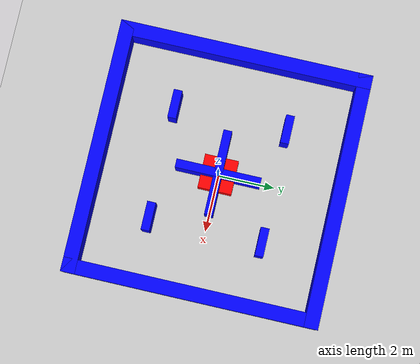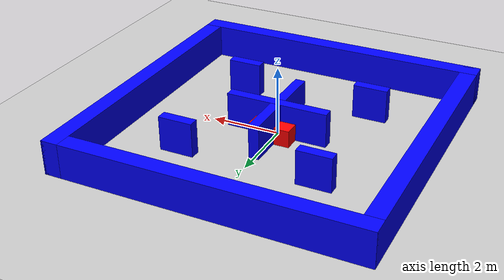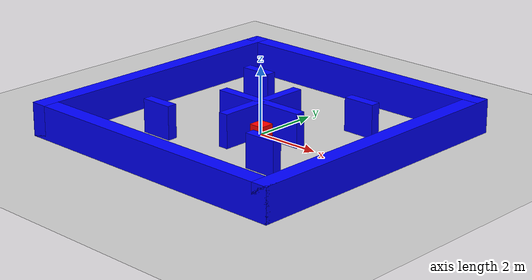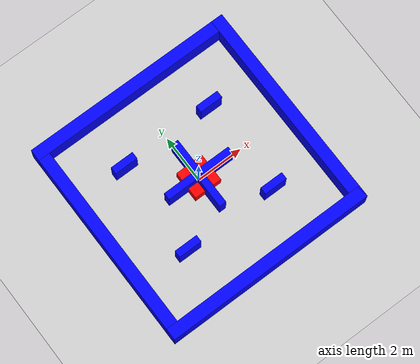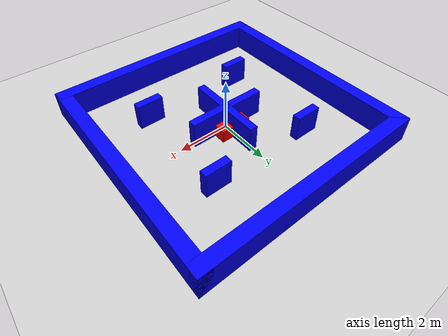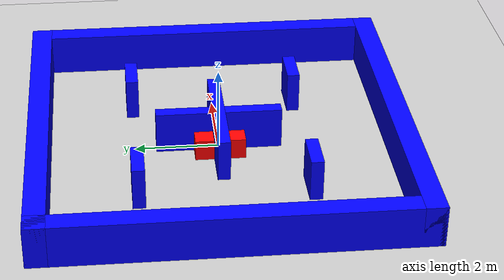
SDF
<?xml version="1.0"?>
<sdf version="1.9">
  <world name="pacman_maze">
    <!-- Physics -->
    <physics name="default_physics" default="true" type="ode">
      <max_step_size>0.001</max_step_size>
      <real_time_factor>1.0</real_time_factor>
      <real_time_update_rate>1000</real_time_update_rate>
    </physics>

    <!-- Global light -->
    <light type="directional" name="sun">
      <cast_shadows>true</cast_shadows>
      <pose>0 0 10 0 0 0</pose>
      <diffuse>0.8 0.8 0.8 1</diffuse>
      <specular>0.2 0.2 0.2 1</specular>
      <attenuation>
        <range>1000</range>
        <constant>0.9</constant>
        <linear>0.01</linear>
        <quadratic>0.001</quadratic>
      </attenuation>
      <direction>-0.5 0.1 -0.9</direction>
    </light>

    <!-- Ground plane -->
    <model name="ground_plane">
      <static>true</static>
      <link name="link">
        <collision name="collision">
          <geometry>
            <plane>
              <normal>0 0 1</normal>
              <size>20 20</size>
            </plane>
          </geometry>
          <surface>
            <friction>
              <ode>
                <mu>100</mu>
                <mu2>50</mu2>
              </ode>
            </friction>
          </surface>
        </collision>
        <visual name="visual">
          <geometry>
            <plane>
              <normal>0 0 1</normal>
              <size>20 20</size>
            </plane>
          </geometry>
          <material>
            <script>
              <uri>file://media/materials/scripts/gazebo.material</uri>
              <name>Gazebo/Grey</name>
            </script>
          </material>
        </visual>
      </link>
    </model>

    <!-- PACMAN MAZE WALLS -->
    <!-- Outer boundary walls -->
    <model name="outer_wall_north">
      <static>true</static>
      <link name="link">
        <pose>0 4.25 0.5 0 0 0</pose>
        <collision name="collision">
          <geometry>
            <box>
              <size>9 0.5 1</size>
            </box>
          </geometry>
        </collision>
        <visual name="visual">
          <geometry>
            <box>
              <size>9 0.5 1</size>
            </box>
          </geometry>
          <material>
            <ambient>0 0 1 1</ambient>
            <diffuse>0 0 1 1</diffuse>
            <specular>0.1 0.1 0.1 1</specular>
          </material>
        </visual>
      </link>
    </model>

    <model name="outer_wall_south">
      <static>true</static>
      <link name="link">
        <pose>0 -4.25 0.5 0 0 0</pose>
        <collision name="collision">
          <geometry>
            <box>
              <size>9 0.5 1</size>
            </box>
          </geometry>
        </collision>
        <visual name="visual">
          <geometry>
            <box>
              <size>9 0.5 1</size>
            </box>
          </geometry>
          <material>
            <ambient>0 0 1 1</ambient>
            <diffuse>0 0 1 1</diffuse>
            <specular>0.1 0.1 0.1 1</specular>
          </material>
        </visual>
      </link>
    </model>

    <model name="outer_wall_east">
      <static>true</static>
      <link name="link">
        <pose>4.25 0 0.5 0 0 0</pose>
        <collision name="collision">
          <geometry>
            <box>
              <size>0.5 9 1</size>
            </box>
          </geometry>
        </collision>
        <visual name="visual">
          <geometry>
            <box>
              <size>0.5 9 1</size>
            </box>
          </geometry>
          <material>
            <ambient>0 0 1 1</ambient>
            <diffuse>0 0 1 1</diffuse>
            <specular>0.1 0.1 0.1 1</specular>
          </material>
        </visual>
      </link>
    </model>

    <model name="outer_wall_west">
      <static>true</static>
      <link name="link">
        <pose>-4.25 0 0.5 0 0 0</pose>
        <collision name="collision">
          <geometry>
            <box>
              <size>0.5 9 1</size>
            </box>
          </geometry>
        </collision>
        <visual name="visual">
          <geometry>
            <box>
              <size>0.5 9 1</size>
            </box>
          </geometry>
          <material>
            <ambient>0 0 1 1</ambient>
            <diffuse>0 0 1 1</diffuse>
            <specular>0.1 0.1 0.1 1</specular>
          </material>
        </visual>
      </link>
    </model>

    <!-- Inner maze walls - Classic Pacman pattern -->

    <!-- Vertical center walls -->
    <model name="center_vertical">
      <static>true</static>
      <link name="link">
        <pose>0 0 0.5 0 0 0</pose>
        <collision name="collision">
          <geometry>
            <box>
              <size>0.3 3 1</size>
            </box>
          </geometry>
        </collision>
        <visual name="visual">
          <geometry>
            <box>
              <size>0.3 3 1</size>
            </box>
          </geometry>
          <material>
            <ambient>0 0 1 1</ambient>
            <diffuse>0 0 1 1</diffuse>
          </material>
        </visual>
      </link>
    </model>

    <!-- Horizontal center walls -->
    <model name="center_horizontal">
      <static>true</static>
      <link name="link">
        <pose>0 0 0.5 0 0 0</pose>
        <collision name="collision">
          <geometry>
            <box>
              <size>3 0.3 1</size>
            </box>
          </geometry>
        </collision>
        <visual name="visual">
          <geometry>
            <box>
              <size>3 0.3 1</size>
            </box>
          </geometry>
          <material>
            <ambient>0 0 1 1</ambient>
            <diffuse>0 0 1 1</diffuse>
          </material>
        </visual>
      </link>
    </model>

    <!-- Top-left corner walls -->
    <model name="top_left_corner">
      <static>true</static>
      <link name="link">
        <pose>-2 2 0.5 0 0 0</pose>
        <collision name="collision">
          <geometry>
            <box>
              <size>1 0.3 1</size>
            </box>
          </geometry>
        </collision>
        <visual name="visual">
          <geometry>
            <box>
              <size>1 0.3 1</size>
            </box>
          </geometry>
          <material>
            <ambient>0 0 1 1</ambient>
            <diffuse>0 0 1 1</diffuse>
          </material>
        </visual>
      </link>
    </model>

    <!-- Top-right corner walls -->
    <model name="top_right_corner">
      <static>true</static>
      <link name="link">
        <pose>2 2 0.5 0 0 0</pose>
        <collision name="collision">
          <geometry>
            <box>
              <size>1 0.3 1</size>
            </box>
          </geometry>
        </collision>
        <visual name="visual">
          <geometry>
            <box>
              <size>1 0.3 1</size>
            </box>
          </geometry>
          <material>
            <ambient>0 0 1 1</ambient>
            <diffuse>0 0 1 1</diffuse>
          </material>
        </visual>
      </link>
    </model>

    <!-- Bottom-left corner walls -->
    <model name="bottom_left_corner">
      <static>true</static>
      <link name="link">
        <pose>-2 -2 0.5 0 0 0</pose>
        <collision name="collision">
          <geometry>
            <box>
              <size>1 0.3 1</size>
            </box>
          </geometry>
        </collision>
        <visual name="visual">
          <geometry>
            <box>
              <size>1 0.3 1</size>
            </box>
          </geometry>
          <material>
            <ambient>0 0 1 1</ambient>
            <diffuse>0 0 1 1</diffuse>
          </material>
        </visual>
      </link>
    </model>

    <!-- Bottom-right corner walls -->
    <model name="bottom_right_corner">
      <static>true</static>
      <link name="link">
        <pose>2 -2 0.5 0 0 0</pose>
        <collision name="collision">
          <geometry>
            <box>
              <size>1 0.3 1</size>
            </box>
          </geometry>
        </collision>
        <visual name="visual">
          <geometry>
            <box>
              <size>1 0.3 1</size>
            </box>
          </geometry>
          <material>
            <ambient>0 0 1 1</ambient>
            <diffuse>0 0 1 1</diffuse>
          </material>
        </visual>
      </link>
    </model>

    <!-- Ghost house in center -->
    <model name="ghost_house">
      <static>true</static>
      <link name="link">
        <pose>0 0 0.25 0 0 0</pose>
        <collision name="collision">
          <geometry>
            <box>
              <size>1.2 1.2 0.5</size>
            </box>
          </geometry>
        </collision>
        <visual name="visual">
          <geometry>
            <box>
              <size>1.2 1.2 0.5</size>
            </box>
          </geometry>
          <material>
            <ambient>1 0 0 1</ambient>
            <diffuse>1 0 0 1</diffuse>
          </material>
        </visual>
      </link>
    </model>

  </world>
</sdf>
